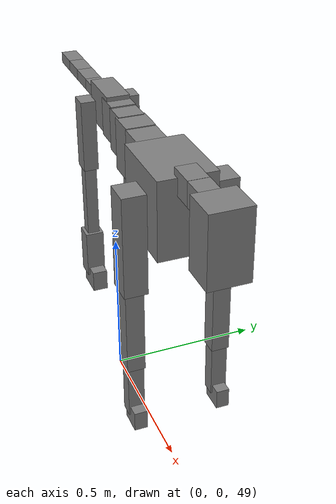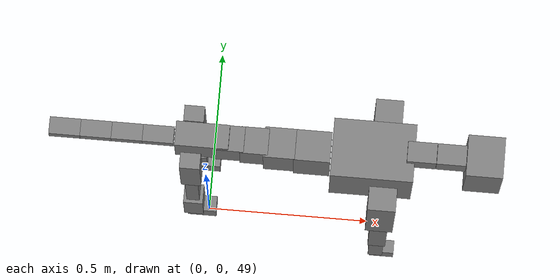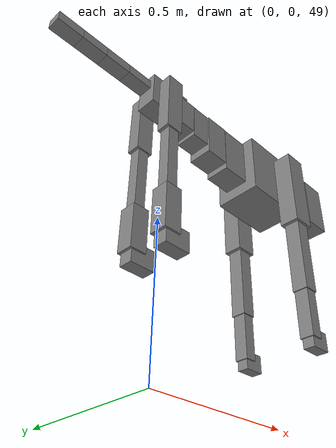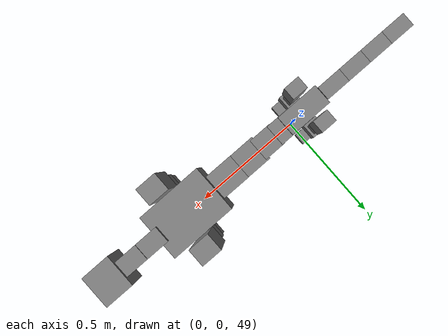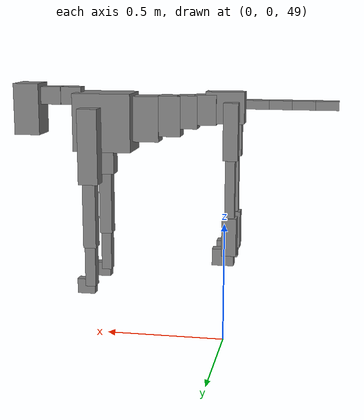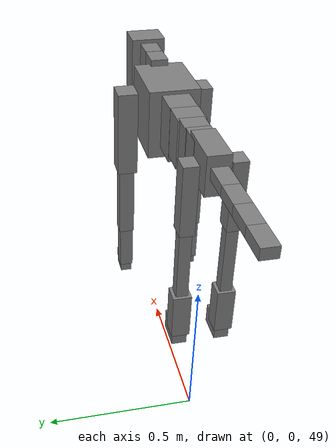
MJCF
<mujoco model="dog">

    <default>
        <joint armature="0.02" stiffness="1" damping="0.2" limited="true"/>
        <geom condim="3" friction="1 0.05 0.05" margin="0.01"/>
        <motor ctrllimited="true" ctrlrange="-1.0 1.0" forcelimited="true" gear="50"/>
    </default>

    <compiler inertiafromgeom="true" angle="radian"/>

    <option timestep="0.016" iterations="50" tolerance="1e-10" solver="Newton" jacobian="dense" cone="pyramidal"/>

    <size nconmax="20000" njmax="60000" nstack="5000000"/>
    <visual>
        <map force="0.1" zfar="30"/>
        <rgba haze="0.15 0.25 0.35 1"/>
        <quality shadowsize="2048"/>
        <global offwidth="800" offheight="800"/>
    </visual>

    <asset>
        <texture type="skybox" builtin="gradient" rgb1="0.3 0.5 0.7" rgb2="0 0 0" width="512" height="512"/>
        <texture name="texplane" type="2d" builtin="checker" rgb1=".2 .3 .4" rgb2=".1 0.15 0.2" width="512" height="512"
                 mark="cross" markrgb=".8 .8 .8"/>
        <texture name="texgeom" type="cube" builtin="flat" mark="cross" width="127" height="1278" rgb1="0.8 0.6 0.4"
                 rgb2="0.8 0.6 0.4" markrgb="1 1 1" random="0.01"/>

        <material name="matplane" reflectance="0.3" texture="texplane" texrepeat="1 1" texuniform="true"/>
        <material name="matgeom" texture="texgeom" texuniform="true" rgba="0.8 0.6 .4 1"/>
    </asset>

    <worldbody>
        <geom name="floor" pos="0 0 0" size="0 0 .25" type="plane" material="matplane" condim="3"/>

        <light directional="false" diffuse=".2 .2 .2" specular="0 0 0" pos="0 0 5" dir="0 0 -1" castshadow="false"/>
        <light mode="targetbodycom" target="torso" directional="false" diffuse=".8 .8 .8" specular="0.3 0.3 0.3"
               pos="0 0 4.0" dir="0 0 -1"/>

        <body name="root" pos="0 0 50">
            <freejoint name="root_1"/>
            <geom type="box" pos="0 0 -0.02" size="0.0774  0.0358  0.063" density="2030"/>

            <body name="spine1" pos="0.054 0 0">
                <joint name="spine1_y" axis="0 1 0" range="0 0.7" limited="true"/>
                <geom type="box" pos="0.02375 0 -0.03" size="0.04375  0.0375  0.05985" density="2030"/>

                <body name="spine2" pos="0.0612 0 0">
                    <joint name="spine2_y" axis="0 1 0" range="-0.15 0.15" limited="true"/>
                    <geom type="box" pos="0.03555  0  -0.04" size="0.04055  0.039  0.06615" density="2030"/>

                    <body name="spine3" pos="0.0730 0 0">
                        <joint name="spine3_y" axis="0 1 0" range="-0.15 0.15" limited="true"/>
                        <geom type="box" pos="0.03555  0  -0.057" size="0.04555  0.0445  0.081" density="2030"/>

                        <body name="spine4" pos="0.0780 0 0">
                            <joint name="spine4_y" axis="0 1 0" range="-0.15 0.15" limited="true"/>
                            <geom type="box" pos="0.05265  0  -0.07" size="0.05265  0.045  0.09135" density="2030"/>

                            <body name="torso" pos="0.1082 0 0">
                                <joint name="torso_y" axis="0 1 0" range="-0.15 0.15" limited="true"/>
                                <geom type="box" pos="0.11925  0  -0.085" size="0.11925  0.085  0.11745"
                                      density="2030"/>

                                <body name="neck1" pos="0.2160  0   0.0180">
                                    <joint name="neck1_y" axis="0 1 0" range="-1.2  -1" limited="true"/>
                                    <geom type="box" pos="0.0423  0  0" size="0.0423  0.03  0.036" density="2325"/>

                                    <body name="neck2" pos="0.0853  0  0">
                                        <joint name="neck2_y" axis="0 1 0" range="0.1  0" limited="true"/>
                                        <geom type="box" pos="0.0423  0  0" size="0.0423  0.03  0.036" density="2325"/>

                                        <body name="head" pos="0.0853  0  0">
                                            <joint name="head_y" axis="0 1 0" range="-0.3  -0.2" limited="true"/>
                                            <geom type="box" pos="0.0531  0  -0.055" size="0.0531  0.06  0.1044"
                                                  density="4030"/>

                                        </body>
                                    </body>
                                </body>

                                <body name="front_shoulder" pos="0.156  0   -0.0480">
                                    <joint name="front_shoulder_y" axis="0 1 0" range="-1 1.5" limited="true"/>
                                    <geom type="box" pos="0 0.13 -0.1243" size="0.0404  0.0345  0.1509" density="1158"/>
                                    <geom type="box" pos="0 -0.13 -0.1243" size="0.0404  0.0345  0.1509"
                                          density="1158"/>

                                    <body name="front_elbow" pos="0  0  -0.2486">
                                        <joint name="front_elbow_y" axis="0 1 0" range="-2 0" limited="true"/>
                                        <geom type="box" pos="0 0.13 -0.1441" size="0.0264  0.0270  0.1441"
                                              density="1081"/>
                                        <geom type="box" pos="0 -0.13 -0.1441" size="0.0264  0.0270  0.1441"
                                              density="1081"/>

                                        <body name="front_wrist" pos="0  0  -0.2882">
                                            <joint name="front_wrist_y" axis="0 1 0" range="-0.2 0" limited="true"/>
                                            <geom type="box" pos="0 0.13 -0.0746" size="0.0216  0.0241  0.0877"
                                                  density="1664"/>
                                            <geom type="box" pos="0 -0.13 -0.0746" size="0.0216  0.0241  0.0877"
                                                  density="1664"/>

                                            <body name="front_finger_end" pos="0  0  -0.1491">
                                                <joint name="front_finger_y" axis="0 1 0" range="-0.4 1"
                                                       limited="true"/>
                                                <geom type="box" pos="0.0198  0.13  -0.0156"
                                                      size="0.0363  0.0198  0.0306" density="1515"/>
                                                <geom type="box" pos="0.0198  -0.13  -0.0156"
                                                      size="0.0363  0.0198  0.0306" density="1515"/>

                                            </body>

                                        </body>
                                    </body>
                                </body>

                            </body>
                        </body>
                    </body>
                </body>
            </body>

            <body name="back_hip" pos="-0.03 0 -0.018">
                <joint name="back_hip_y" axis="0 1 0" range="-1.5 0.3" limited="true"/>
                <geom type="box" pos="0 0.07 -0.0907" size="0.0295  0.0232  0.1135" density="1154"/>
                <geom type="box" pos="0 -0.07 -0.0907" size="0.0295  0.0232  0.1135" density="1154"/>

                <body name="back_knee" pos="0  0  -0.1814">
                    <joint name="back_knee_y" axis="0 1 0" range="0 2.8" limited="true"/>
                    <geom type="box" pos="0 0.07 -0.1325" size="0.0192  0.0190  0.1481" density="1227"/>
                    <geom type="box" pos="0 -0.07 -0.1325" size="0.0192  0.0190  0.1481" density="1227"/>

                    <body name="back_ankle" pos="0  0  -0.2651">
                        <joint name="back_ankle_y" axis="0 1 0" range="-2.2 0" limited="true"/>
                        <geom type="box" pos="0 0.07 -0.0654" size="0.0291  0.0291  0.0767" density="1284"/>
                        <geom type="box" pos="0 -0.07 -0.0654" size="0.0291  0.0291  0.0767" density="1284"/>

                        <body name="back_toe_end" pos="0  0  -0.1308">
                            <joint name="back_toe_y" axis="0 1 0" range="-0.4 1" limited="true"/>
                            <geom type="box" pos="0.0237  0.07  -0.0191" size="0.0434  0.0237  0.0341" density="1515"/>
                            <geom type="box" pos="0.0237  -0.07  -0.0191" size="0.0434  0.0237  0.0341" density="1515"/>

                        </body>
                    </body>
                </body>
            </body>

            <body name="tail1" pos="-0.074 0 -0.006">
                <joint name="tail1_y" axis="0 1 0" range="-0.2 0.2" limited="true"/>
                <geom type="box" pos="-0.0536  0  0" size="0.045  0.025  0.0175" density="1587"/>

                <body name="tail2" pos="-0.09 0 0">
                    <joint name="tail2_y" axis="0 1 0" range="-0.2 0.2" limited="true"/>
                    <geom type="box" pos="-0.0536  0  0" size="0.045  0.025  0.0175" density="1587"/>

                    <body name="tail3" pos="-0.09 0 0">
                        <joint name="tail3_y" axis="0 1 0" range="-0.2 0.2" limited="true"/>
                        <geom type="box" pos="-0.0536  0  0" size="0.045  0.025  0.0175" density="1587"/>

                        <body name="tail4" pos="-0.09 0 0">
                            <joint name="tail4_y" axis="0 1 0" range="-0.2 0.2" limited="true"/>
                            <geom type="box" pos="-0.0536  0  0" size="0.045  0.025  0.0175" density="1587"/>

                        </body>
                    </body>
                </body>
            </body>
        </body>
    </worldbody>

    <actuator>
        <motor joint="spine1_y" forcerange="-150 150     "/>
        <motor joint="spine2_y" forcerange="-150 150     "/>
        <motor joint="spine3_y" forcerange="-150 150     "/>
        <motor joint="spine4_y" forcerange="-150 150     "/>
        <motor joint="torso_y" forcerange="-150 150     "/>
        <motor joint="neck1_y" forcerange="-100 100       "/>
        <motor joint="neck2_y" forcerange="-100 100       "/>
        <motor joint="head_y" forcerange="-150 150       "/>
        <motor joint="front_shoulder_y" forcerange="-171.54 158.51"/>
        <motor joint="front_elbow_y" forcerange="-150.18 145.85"/>
        <motor joint="front_wrist_y" forcerange="-61.57 130.86"/>
        <motor joint="front_finger_y" forcerange="-27.37 38.31"/>
        <motor joint="back_hip_y" forcerange="-295.22 213.63"/>
        <motor joint="back_knee_y" forcerange="-205.84 270.01"/>
        <motor joint="back_angle_y" forcerange="-174.05 191.65"/>
        <motor joint="back_toe_y" forcerange="-79.81 29.78"/>
        <motor joint="tail1_y" forcerange="-50 50     "/>
        <motor joint="tail2_y" forcerange="-50 50     "/>
        <motor joint="tail3_y" forcerange="-50 50     "/>
        <motor joint="tail4_y" forcerange="-50 50     "/>
    </actuator>
</mujoco>
